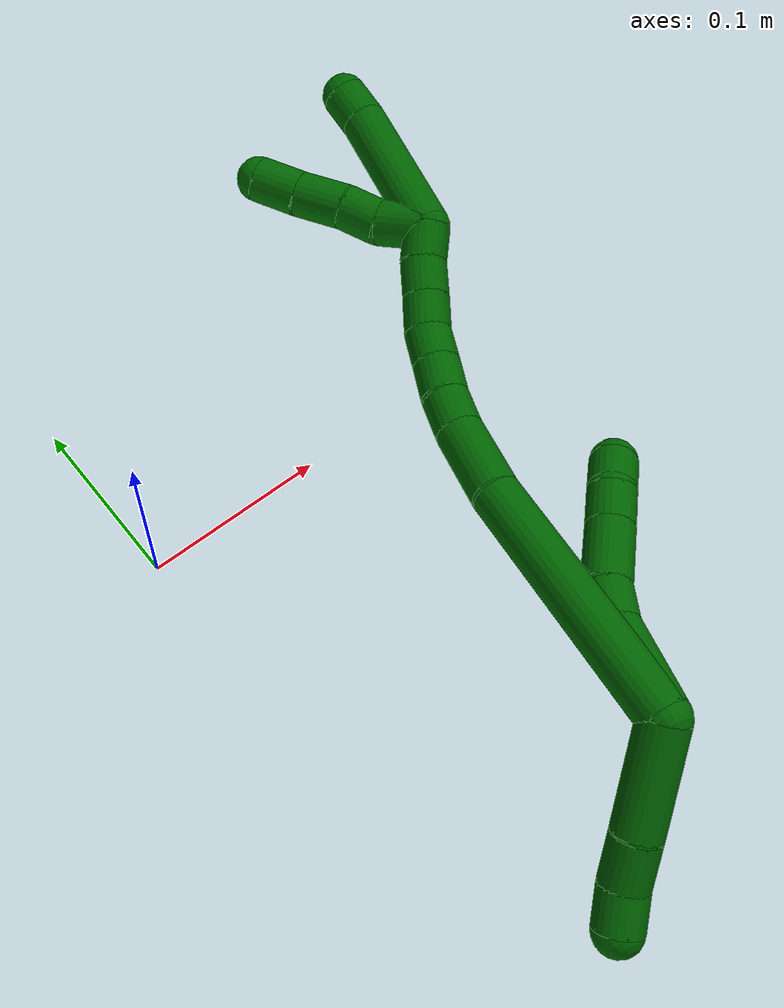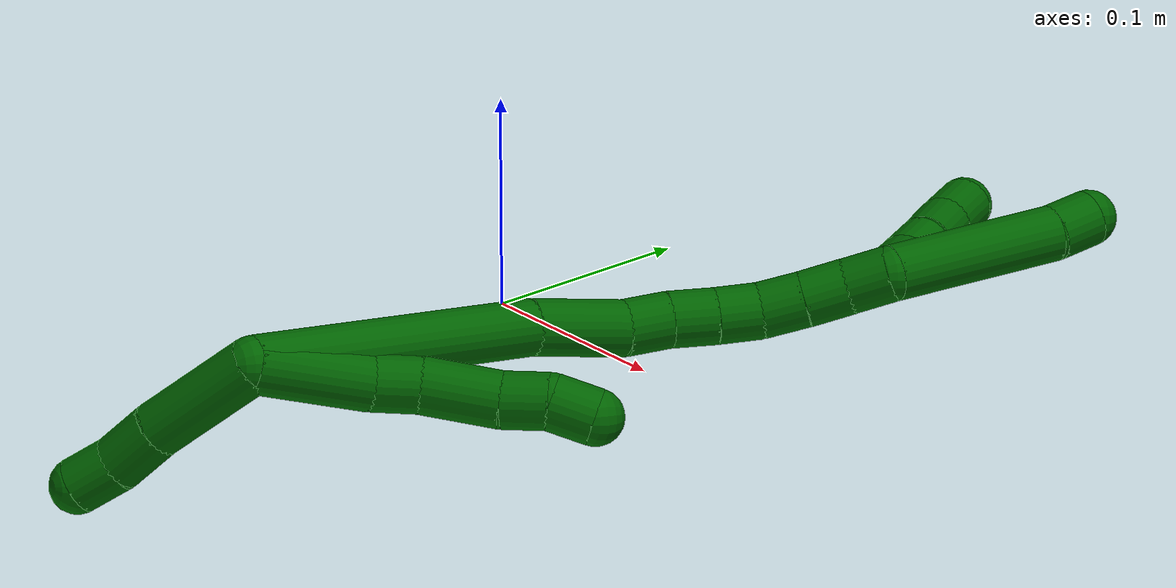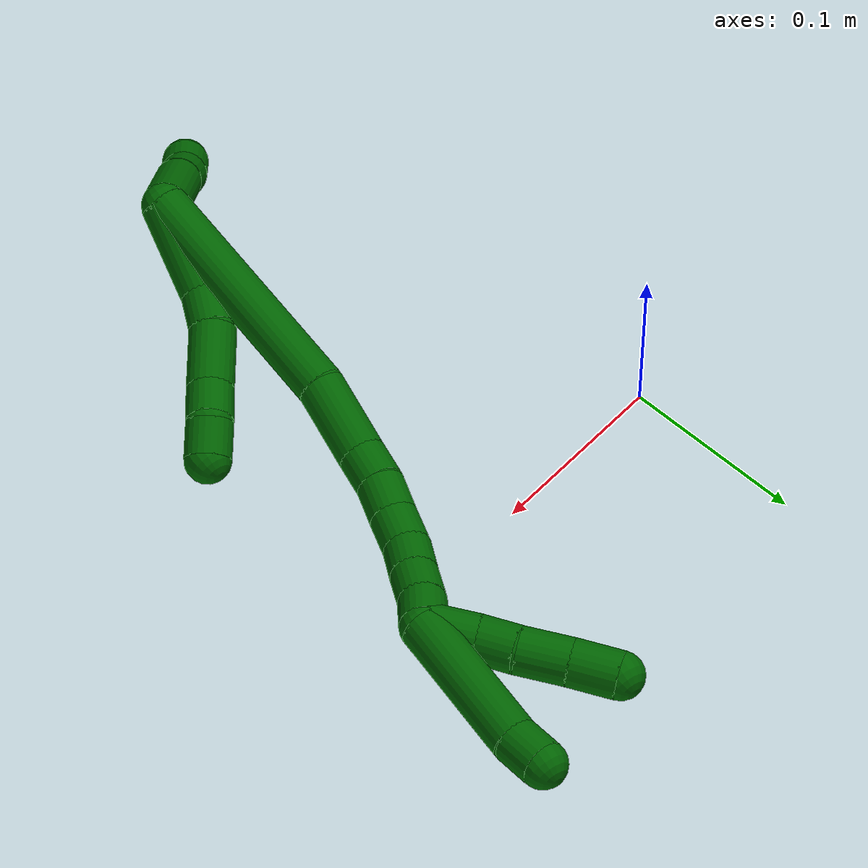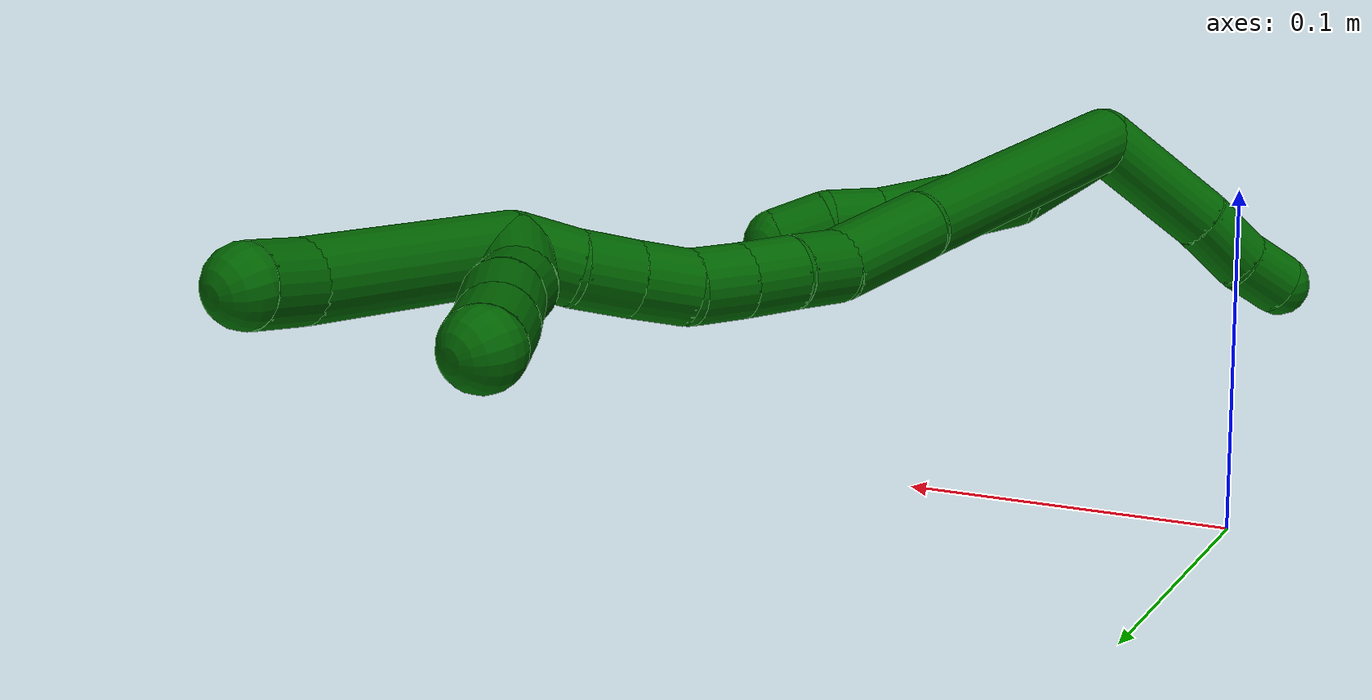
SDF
<sdf version="1.7">
 <world name="default">
  <model name="6">
   <static>0</static>
   <link name="6">
    <collision name="collision-cylinder-e_1_2_8">
     <pose>0.005046 -0.003899 -0.025678 2.9909 0.191883 1.81129</pose>
     <geometry><cylinder><radius>0.0125</radius><length>0.052916</length></cylinder></geometry>
     <surface>
      <friction><ode><mu>1.16</mu><mu2>1.16</mu2><slip1>0</slip1><slip2>0</slip2></ode></friction>
      <contact><ode><kp>1e+06</kp><kd>1</kd><max_vel>0</max_vel><min_depth>0.001</min_depth></ode></contact>
     </surface>
    </collision>
    <visual name="visual-cylinder-e_1_2_8">
     <pose>0.005046 -0.003899 -0.025678 2.9909 0.191883 1.81129</pose>
     <geometry><cylinder><radius>0.0125</radius><length>0.052916</length></cylinder></geometry>
     <material><ambient>0 0.392157 0.003922 1</ambient></material>
    </visual>
    <collision name="collision-cylinder-e_2_8_9">
     <pose>0.013895 -0.006903 -0.061388 -3.05264 0.361105 -2.66328</pose>
     <geometry><cylinder><radius>0.0125</radius><length>0.021531</length></cylinder></geometry>
     <surface>
      <friction><ode><mu>1.16</mu><mu2>1.16</mu2><slip1>0</slip1><slip2>0</slip2></ode></friction>
      <contact><ode><kp>1e+06</kp><kd>1</kd><max_vel>0</max_vel><min_depth>0.001</min_depth></ode></contact>
     </surface>
    </collision>
    <visual name="visual-cylinder-e_2_8_9">
     <pose>0.013895 -0.006903 -0.061388 -3.05264 0.361105 -2.66328</pose>
     <geometry><cylinder><radius>0.0125</radius><length>0.021531</length></cylinder></geometry>
     <material><ambient>0 0.392157 0.003922 1</ambient></material>
    </visual>
    <collision name="collision-cylinder-e_3_9_10">
     <pose>0.027583 -0.004657 -0.085718 -3.04735 0.602761 -2.84049</pose>
     <geometry><cylinder><radius>0.0125</radius><length>0.034869</length></cylinder></geometry>
     <surface>
      <friction><ode><mu>1.16</mu><mu2>1.16</mu2><slip1>0</slip1><slip2>0</slip2></ode></friction>
      <contact><ode><kp>1e+06</kp><kd>1</kd><max_vel>0</max_vel><min_depth>0.001</min_depth></ode></contact>
     </surface>
    </collision>
    <visual name="visual-cylinder-e_3_9_10">
     <pose>0.027583 -0.004657 -0.085718 -3.04735 0.602761 -2.84049</pose>
     <geometry><cylinder><radius>0.0125</radius><length>0.034869</length></cylinder></geometry>
     <material><ambient>0 0.392157 0.003922 1</ambient></material>
    </visual>
    <collision name="collision-cylinder-e_4_10_11">
     <pose>0.042749 -0.001023 -0.108576 -2.88101 0.537674 -2.25368</pose>
     <geometry><cylinder><radius>0.0125</radius><length>0.02063</length></cylinder></geometry>
     <surface>
      <friction><ode><mu>1.16</mu><mu2>1.16</mu2><slip1>0</slip1><slip2>0</slip2></ode></friction>
      <contact><ode><kp>1e+06</kp><kd>1</kd><max_vel>0</max_vel><min_depth>0.001</min_depth></ode></contact>
     </surface>
    </collision>
    <visual name="visual-cylinder-e_4_10_11">
     <pose>0.042749 -0.001023 -0.108576 -2.88101 0.537674 -2.25368</pose>
     <geometry><cylinder><radius>0.0125</radius><length>0.02063</length></cylinder></geometry>
     <material><ambient>0 0.392157 0.003922 1</ambient></material>
    </visual>
    <collision name="collision-cylinder-e_5_11_6">
     <pose>0.054017 0.000445 -0.125141 3.04016 0.639589 2.83741</pose>
     <geometry><cylinder><radius>0.0125</radius><length>0.020053</length></cylinder></geometry>
     <surface>
      <friction><ode><mu>1.16</mu><mu2>1.16</mu2><slip1>0</slip1><slip2>0</slip2></ode></friction>
      <contact><ode><kp>1e+06</kp><kd>1</kd><max_vel>0</max_vel><min_depth>0.001</min_depth></ode></contact>
     </surface>
    </collision>
    <visual name="visual-cylinder-e_5_11_6">
     <pose>0.054017 0.000445 -0.125141 3.04016 0.639589 2.83741</pose>
     <geometry><cylinder><radius>0.0125</radius><length>0.020053</length></cylinder></geometry>
     <material><ambient>0 0.392157 0.003922 1</ambient></material>
    </visual>
    <collision name="collision-cylinder-e_1_2_12">
     <pose>-0.009123 -0.021056 0.014551 0.966096 -0.342385 -0.180858</pose>
     <geometry><cylinder><radius>0.0125</radius><length>0.054344</length></cylinder></geometry>
     <surface>
      <friction><ode><mu>1.16</mu><mu2>1.16</mu2><slip1>0</slip1><slip2>0</slip2></ode></friction>
      <contact><ode><kp>1e+06</kp><kd>1</kd><max_vel>0</max_vel><min_depth>0.001</min_depth></ode></contact>
     </surface>
    </collision>
    <visual name="visual-cylinder-e_1_2_12">
     <pose>-0.009123 -0.021056 0.014551 0.966096 -0.342385 -0.180858</pose>
     <geometry><cylinder><radius>0.0125</radius><length>0.054344</length></cylinder></geometry>
     <material><ambient>0 0.392157 0.003922 1</ambient></material>
    </visual>
    <collision name="collision-cylinder-e_2_12_13">
     <pose>-0.021754 -0.052501 0.035118 1.0459 -0.284355 -0.164668</pose>
     <geometry><cylinder><radius>0.0125</radius><length>0.025013</length></cylinder></geometry>
     <surface>
      <friction><ode><mu>1.16</mu><mu2>1.16</mu2><slip1>0</slip1><slip2>0</slip2></ode></friction>
      <contact><ode><kp>1e+06</kp><kd>1</kd><max_vel>0</max_vel><min_depth>0.001</min_depth></ode></contact>
     </surface>
    </collision>
    <visual name="visual-cylinder-e_2_12_13">
     <pose>-0.021754 -0.052501 0.035118 1.0459 -0.284355 -0.164668</pose>
     <geometry><cylinder><radius>0.0125</radius><length>0.025013</length></cylinder></geometry>
     <material><ambient>0 0.392157 0.003922 1</ambient></material>
    </visual>
    <collision name="collision-cylinder-e_3_13_5">
     <pose>-0.028522 -0.070138 0.047718 0.833341 -0.32132 -0.143203</pose>
     <geometry><cylinder><radius>0.0125</radius><length>0.020642</length></cylinder></geometry>
     <surface>
      <friction><ode><mu>1.16</mu><mu2>1.16</mu2><slip1>0</slip1><slip2>0</slip2></ode></friction>
      <contact><ode><kp>1e+06</kp><kd>1</kd><max_vel>0</max_vel><min_depth>0.001</min_depth></ode></contact>
     </surface>
    </collision>
    <visual name="visual-cylinder-e_3_13_5">
     <pose>-0.028522 -0.070138 0.047718 0.833341 -0.32132 -0.143203</pose>
     <geometry><cylinder><radius>0.0125</radius><length>0.020642</length></cylinder></geometry>
     <material><ambient>0 0.392157 0.003922 1</ambient></material>
    </visual>
    <collision name="collision-cylinder-e_1_2_14">
     <pose>-0.004419 -0.000276 -0.067313 3.1375 -0.06555 -3.01687</pose>
     <geometry><cylinder><radius>0.0125</radius><length>0.134917</length></cylinder></geometry>
     <surface>
      <friction><ode><mu>1.16</mu><mu2>1.16</mu2><slip1>0</slip1><slip2>0</slip2></ode></friction>
      <contact><ode><kp>1e+06</kp><kd>1</kd><max_vel>0</max_vel><min_depth>0.001</min_depth></ode></contact>
     </surface>
    </collision>
    <visual name="visual-cylinder-e_1_2_14">
     <pose>-0.004419 -0.000276 -0.067313 3.1375 -0.06555 -3.01687</pose>
     <geometry><cylinder><radius>0.0125</radius><length>0.134917</length></cylinder></geometry>
     <material><ambient>0 0.392157 0.003922 1</ambient></material>
    </visual>
    <collision name="collision-cylinder-e_2_14_15">
     <pose>-0.006858 -0.001683 -0.156269 3.08933 0.091086 2.10024</pose>
     <geometry><cylinder><radius>0.0125</radius><length>0.043524</length></cylinder></geometry>
     <surface>
      <friction><ode><mu>1.16</mu><mu2>1.16</mu2><slip1>0</slip1><slip2>0</slip2></ode></friction>
      <contact><ode><kp>1e+06</kp><kd>1</kd><max_vel>0</max_vel><min_depth>0.001</min_depth></ode></contact>
     </surface>
    </collision>
    <visual name="visual-cylinder-e_2_14_15">
     <pose>-0.006858 -0.001683 -0.156269 3.08933 0.091086 2.10024</pose>
     <geometry><cylinder><radius>0.0125</radius><length>0.043524</length></cylinder></geometry>
     <material><ambient>0 0.392157 0.003922 1</ambient></material>
    </visual>
    <collision name="collision-cylinder-e_3_15_16">
     <pose>-0.00393 -0.000989 -0.188131 -2.96479 0.091075 -0.949801</pose>
     <geometry><cylinder><radius>0.0125</radius><length>0.020849</length></cylinder></geometry>
     <surface>
      <friction><ode><mu>1.16</mu><mu2>1.16</mu2><slip1>0</slip1><slip2>0</slip2></ode></friction>
      <contact><ode><kp>1e+06</kp><kd>1</kd><max_vel>0</max_vel><min_depth>0.001</min_depth></ode></contact>
     </surface>
    </collision>
    <visual name="visual-cylinder-e_3_15_16">
     <pose>-0.00393 -0.000989 -0.188131 -2.96479 0.091075 -0.949801</pose>
     <geometry><cylinder><radius>0.0125</radius><length>0.020849</length></cylinder></geometry>
     <material><ambient>0 0.392157 0.003922 1</ambient></material>
    </visual>
    <collision name="collision-cylinder-e_4_16_17">
     <pose>-0.000573 0.002386 -0.208276 -2.98676 0.235365 -1.98026</pose>
     <geometry><cylinder><radius>0.0125</radius><length>0.02066</length></cylinder></geometry>
     <surface>
      <friction><ode><mu>1.16</mu><mu2>1.16</mu2><slip1>0</slip1><slip2>0</slip2></ode></friction>
      <contact><ode><kp>1e+06</kp><kd>1</kd><max_vel>0</max_vel><min_depth>0.001</min_depth></ode></contact>
     </surface>
    </collision>
    <visual name="visual-cylinder-e_4_16_17">
     <pose>-0.000573 0.002386 -0.208276 -2.98676 0.235365 -1.98026</pose>
     <geometry><cylinder><radius>0.0125</radius><length>0.02066</length></cylinder></geometry>
     <material><ambient>0 0.392157 0.003922 1</ambient></material>
    </visual>
    <collision name="collision-cylinder-e_5_17_18">
     <pose>0.003917 0.005739 -0.227827 -2.95633 0.209448 -1.69398</pose>
     <geometry><cylinder><radius>0.0125</radius><length>0.020025</length></cylinder></geometry>
     <surface>
      <friction><ode><mu>1.16</mu><mu2>1.16</mu2><slip1>0</slip1><slip2>0</slip2></ode></friction>
      <contact><ode><kp>1e+06</kp><kd>1</kd><max_vel>0</max_vel><min_depth>0.001</min_depth></ode></contact>
     </surface>
    </collision>
    <visual name="visual-cylinder-e_5_17_18">
     <pose>0.003917 0.005739 -0.227827 -2.95633 0.209448 -1.69398</pose>
     <geometry><cylinder><radius>0.0125</radius><length>0.020025</length></cylinder></geometry>
     <material><ambient>0 0.392157 0.003922 1</ambient></material>
    </visual>
    <collision name="collision-cylinder-e_6_18_19">
     <pose>0.00901 0.011673 -0.246056 -2.69405 0.30557 -1.18972</pose>
     <geometry><cylinder><radius>0.0125</radius><length>0.020012</length></cylinder></geometry>
     <surface>
      <friction><ode><mu>1.16</mu><mu2>1.16</mu2><slip1>0</slip1><slip2>0</slip2></ode></friction>
      <contact><ode><kp>1e+06</kp><kd>1</kd><max_vel>0</max_vel><min_depth>0.001</min_depth></ode></contact>
     </surface>
    </collision>
    <visual name="visual-cylinder-e_6_18_19">
     <pose>0.00901 0.011673 -0.246056 -2.69405 0.30557 -1.18972</pose>
     <geometry><cylinder><radius>0.0125</radius><length>0.020012</length></cylinder></geometry>
     <material><ambient>0 0.392157 0.003922 1</ambient></material>
    </visual>
    <collision name="collision-cylinder-e_7_19_20">
     <pose>0.014725 0.020153 -0.26325 -2.67277 0.273878 -1.04675</pose>
     <geometry><cylinder><radius>0.0125</radius><length>0.020005</length></cylinder></geometry>
     <surface>
      <friction><ode><mu>1.16</mu><mu2>1.16</mu2><slip1>0</slip1><slip2>0</slip2></ode></friction>
      <contact><ode><kp>1e+06</kp><kd>1</kd><max_vel>0</max_vel><min_depth>0.001</min_depth></ode></contact>
     </surface>
    </collision>
    <visual name="visual-cylinder-e_7_19_20">
     <pose>0.014725 0.020153 -0.26325 -2.67277 0.273878 -1.04675</pose>
     <geometry><cylinder><radius>0.0125</radius><length>0.020005</length></cylinder></geometry>
     <material><ambient>0 0.392157 0.003922 1</ambient></material>
    </visual>
    <collision name="collision-cylinder-e_8_20_1">
     <pose>0.021357 0.029722 -0.279418 -2.53854 0.403359 -1.16313</pose>
     <geometry><cylinder><radius>0.0125</radius><length>0.020005</length></cylinder></geometry>
     <surface>
      <friction><ode><mu>1.16</mu><mu2>1.16</mu2><slip1>0</slip1><slip2>0</slip2></ode></friction>
      <contact><ode><kp>1e+06</kp><kd>1</kd><max_vel>0</max_vel><min_depth>0.001</min_depth></ode></contact>
     </surface>
    </collision>
    <visual name="visual-cylinder-e_8_20_1">
     <pose>0.021357 0.029722 -0.279418 -2.53854 0.403359 -1.16313</pose>
     <geometry><cylinder><radius>0.0125</radius><length>0.020005</length></cylinder></geometry>
     <material><ambient>0 0.392157 0.003922 1</ambient></material>
    </visual>
    <collision name="collision-cylinder-e_1_1_21">
     <pose>0.024383 0.041064 -0.326415 -2.98748 -0.022559 0.29015</pose>
     <geometry><cylinder><radius>0.0125</radius><length>0.079806</length></cylinder></geometry>
     <surface>
      <friction><ode><mu>1.16</mu><mu2>1.16</mu2><slip1>0</slip1><slip2>0</slip2></ode></friction>
      <contact><ode><kp>1e+06</kp><kd>1</kd><max_vel>0</max_vel><min_depth>0.001</min_depth></ode></contact>
     </surface>
    </collision>
    <visual name="visual-cylinder-e_1_1_21">
     <pose>0.024383 0.041064 -0.326415 -2.98748 -0.022559 0.29015</pose>
     <geometry><cylinder><radius>0.0125</radius><length>0.079806</length></cylinder></geometry>
     <material><ambient>0 0.392157 0.003922 1</ambient></material>
    </visual>
    <collision name="collision-cylinder-e_2_21_4">
     <pose>0.021769 0.049229 -0.375574 -2.93499 -0.170576 1.37921</pose>
     <geometry><cylinder><radius>0.0125</radius><length>0.020194</length></cylinder></geometry>
     <surface>
      <friction><ode><mu>1.16</mu><mu2>1.16</mu2><slip1>0</slip1><slip2>0</slip2></ode></friction>
      <contact><ode><kp>1e+06</kp><kd>1</kd><max_vel>0</max_vel><min_depth>0.001</min_depth></ode></contact>
     </surface>
    </collision>
    <visual name="visual-cylinder-e_2_21_4">
     <pose>0.021769 0.049229 -0.375574 -2.93499 -0.170576 1.37921</pose>
     <geometry><cylinder><radius>0.0125</radius><length>0.020194</length></cylinder></geometry>
     <material><ambient>0 0.392157 0.003922 1</ambient></material>
    </visual>
    <collision name="collision-cylinder-e_1_1_22">
     <pose>0.016143 0.031041 -0.295941 2.73056 -0.752667 -2.17075</pose>
     <geometry><cylinder><radius>0.0125</radius><length>0.026741</length></cylinder></geometry>
     <surface>
      <friction><ode><mu>1.16</mu><mu2>1.16</mu2><slip1>0</slip1><slip2>0</slip2></ode></friction>
      <contact><ode><kp>1e+06</kp><kd>1</kd><max_vel>0</max_vel><min_depth>0.001</min_depth></ode></contact>
     </surface>
    </collision>
    <visual name="visual-cylinder-e_1_1_22">
     <pose>0.016143 0.031041 -0.295941 2.73056 -0.752667 -2.17075</pose>
     <geometry><cylinder><radius>0.0125</radius><length>0.026741</length></cylinder></geometry>
     <material><ambient>0 0.392157 0.003922 1</ambient></material>
    </visual>
    <collision name="collision-cylinder-e_2_22_23">
     <pose>0.000654 0.027119 -0.313401 3.13895 -0.640753 -3.13364</pose>
     <geometry><cylinder><radius>0.0125</radius><length>0.021242</length></cylinder></geometry>
     <surface>
      <friction><ode><mu>1.16</mu><mu2>1.16</mu2><slip1>0</slip1><slip2>0</slip2></ode></friction>
      <contact><ode><kp>1e+06</kp><kd>1</kd><max_vel>0</max_vel><min_depth>0.001</min_depth></ode></contact>
     </surface>
    </collision>
    <visual name="visual-cylinder-e_2_22_23">
     <pose>0.000654 0.027119 -0.313401 3.13895 -0.640753 -3.13364</pose>
     <geometry><cylinder><radius>0.0125</radius><length>0.021242</length></cylinder></geometry>
     <material><ambient>0 0.392157 0.003922 1</ambient></material>
    </visual>
    <collision name="collision-cylinder-e_3_23_24">
     <pose>-0.01453 0.025587 -0.33182 2.99036 -0.722645 -2.74588</pose>
     <geometry><cylinder><radius>0.0125</radius><length>0.026716</length></cylinder></geometry>
     <surface>
      <friction><ode><mu>1.16</mu><mu2>1.16</mu2><slip1>0</slip1><slip2>0</slip2></ode></friction>
      <contact><ode><kp>1e+06</kp><kd>1</kd><max_vel>0</max_vel><min_depth>0.001</min_depth></ode></contact>
     </surface>
    </collision>
    <visual name="visual-cylinder-e_3_23_24">
     <pose>-0.01453 0.025587 -0.33182 2.99036 -0.722645 -2.74588</pose>
     <geometry><cylinder><radius>0.0125</radius><length>0.026716</length></cylinder></geometry>
     <material><ambient>0 0.392157 0.003922 1</ambient></material>
    </visual>
    <collision name="collision-cylinder-e_4_24_3">
     <pose>-0.031282 0.023231 -0.351555 3.05564 -0.676297 -2.89823</pose>
     <geometry><cylinder><radius>0.0125</radius><length>0.025302</length></cylinder></geometry>
     <surface>
      <friction><ode><mu>1.16</mu><mu2>1.16</mu2><slip1>0</slip1><slip2>0</slip2></ode></friction>
      <contact><ode><kp>1e+06</kp><kd>1</kd><max_vel>0</max_vel><min_depth>0.001</min_depth></ode></contact>
     </surface>
    </collision>
    <visual name="visual-cylinder-e_4_24_3">
     <pose>-0.031282 0.023231 -0.351555 3.05564 -0.676297 -2.89823</pose>
     <geometry><cylinder><radius>0.0125</radius><length>0.025302</length></cylinder></geometry>
     <material><ambient>0 0.392157 0.003922 1</ambient></material>
    </visual>
    <collision name="collision-sphere-3">
     <pose>-0.039201 0.022384 -0.361385 0 -0 0</pose>
     <geometry><sphere><radius>0.0125</radius></sphere></geometry>
     <surface>
      <friction><ode><mu>1.16</mu><mu2>1.16</mu2><slip1>0</slip1><slip2>0</slip2></ode></friction>
      <contact><ode><kp>1e+06</kp><kd>1</kd><max_vel>0</max_vel><min_depth>0.001</min_depth></ode></contact>
     </surface>
    </collision>
    <visual name="visual-sphere-3">
     <pose>-0.039201 0.022384 -0.361385 0 -0 0</pose>
     <geometry><sphere><radius>0.0125</radius></sphere></geometry>
     <material><ambient>0 0.392157 0.003922 1</ambient></material>
    </visual>
    <collision name="collision-sphere-24">
     <pose>-0.023364 0.024078 -0.341725 0 -0 0</pose>
     <geometry><sphere><radius>0.0125</radius></sphere></geometry>
     <surface>
      <friction><ode><mu>1.16</mu><mu2>1.16</mu2><slip1>0</slip1><slip2>0</slip2></ode></friction>
      <contact><ode><kp>1e+06</kp><kd>1</kd><max_vel>0</max_vel><min_depth>0.001</min_depth></ode></contact>
     </surface>
    </collision>
    <visual name="visual-sphere-24">
     <pose>-0.023364 0.024078 -0.341725 0 -0 0</pose>
     <geometry><sphere><radius>0.0125</radius></sphere></geometry>
     <material><ambient>0 0.392157 0.003922 1</ambient></material>
    </visual>
    <collision name="collision-sphere-23">
     <pose>-0.005695 0.027097 -0.321915 0 -0 0</pose>
     <geometry><sphere><radius>0.0125</radius></sphere></geometry>
     <surface>
      <friction><ode><mu>1.16</mu><mu2>1.16</mu2><slip1>0</slip1><slip2>0</slip2></ode></friction>
      <contact><ode><kp>1e+06</kp><kd>1</kd><max_vel>0</max_vel><min_depth>0.001</min_depth></ode></contact>
     </surface>
    </collision>
    <visual name="visual-sphere-23">
     <pose>-0.005695 0.027097 -0.321915 0 -0 0</pose>
     <geometry><sphere><radius>0.0125</radius></sphere></geometry>
     <material><ambient>0 0.392157 0.003922 1</ambient></material>
    </visual>
    <collision name="collision-sphere-22">
     <pose>0.007003 0.027142 -0.304887 0 -0 0</pose>
     <geometry><sphere><radius>0.0125</radius></sphere></geometry>
     <surface>
      <friction><ode><mu>1.16</mu><mu2>1.16</mu2><slip1>0</slip1><slip2>0</slip2></ode></friction>
      <contact><ode><kp>1e+06</kp><kd>1</kd><max_vel>0</max_vel><min_depth>0.001</min_depth></ode></contact>
     </surface>
    </collision>
    <visual name="visual-sphere-22">
     <pose>0.007003 0.027142 -0.304887 0 -0 0</pose>
     <geometry><sphere><radius>0.0125</radius></sphere></geometry>
     <material><ambient>0 0.392157 0.003922 1</ambient></material>
    </visual>
    <collision name="collision-sphere-4">
     <pose>0.020055 0.05127 -0.385313 0 -0 0</pose>
     <geometry><sphere><radius>0.0125</radius></sphere></geometry>
     <surface>
      <friction><ode><mu>1.16</mu><mu2>1.16</mu2><slip1>0</slip1><slip2>0</slip2></ode></friction>
      <contact><ode><kp>1e+06</kp><kd>1</kd><max_vel>0</max_vel><min_depth>0.001</min_depth></ode></contact>
     </surface>
    </collision>
    <visual name="visual-sphere-4">
     <pose>0.020055 0.05127 -0.385313 0 -0 0</pose>
     <geometry><sphere><radius>0.0125</radius></sphere></geometry>
     <material><ambient>0 0.392157 0.003922 1</ambient></material>
    </visual>
    <collision name="collision-sphere-21">
     <pose>0.023483 0.047187 -0.365836 0 -0 0</pose>
     <geometry><sphere><radius>0.0125</radius></sphere></geometry>
     <surface>
      <friction><ode><mu>1.16</mu><mu2>1.16</mu2><slip1>0</slip1><slip2>0</slip2></ode></friction>
      <contact><ode><kp>1e+06</kp><kd>1</kd><max_vel>0</max_vel><min_depth>0.001</min_depth></ode></contact>
     </surface>
    </collision>
    <visual name="visual-sphere-21">
     <pose>0.023483 0.047187 -0.365836 0 -0 0</pose>
     <geometry><sphere><radius>0.0125</radius></sphere></geometry>
     <material><ambient>0 0.392157 0.003922 1</ambient></material>
    </visual>
    <collision name="collision-sphere-1">
     <pose>0.025283 0.03494 -0.286995 0 -0 0</pose>
     <geometry><sphere><radius>0.0125</radius></sphere></geometry>
     <surface>
      <friction><ode><mu>1.16</mu><mu2>1.16</mu2><slip1>0</slip1><slip2>0</slip2></ode></friction>
      <contact><ode><kp>1e+06</kp><kd>1</kd><max_vel>0</max_vel><min_depth>0.001</min_depth></ode></contact>
     </surface>
    </collision>
    <visual name="visual-sphere-1">
     <pose>0.025283 0.03494 -0.286995 0 -0 0</pose>
     <geometry><sphere><radius>0.0125</radius></sphere></geometry>
     <material><ambient>0 0.392157 0.003922 1</ambient></material>
    </visual>
    <collision name="collision-sphere-6">
     <pose>0.060001 -0.000369 -0.133144 0 -0 0</pose>
     <geometry><sphere><radius>0.0125</radius></sphere></geometry>
     <surface>
      <friction><ode><mu>1.16</mu><mu2>1.16</mu2><slip1>0</slip1><slip2>0</slip2></ode></friction>
      <contact><ode><kp>1e+06</kp><kd>1</kd><max_vel>0</max_vel><min_depth>0.001</min_depth></ode></contact>
     </surface>
    </collision>
    <visual name="visual-sphere-6">
     <pose>0.060001 -0.000369 -0.133144 0 -0 0</pose>
     <geometry><sphere><radius>0.0125</radius></sphere></geometry>
     <material><ambient>0 0.392157 0.003922 1</ambient></material>
    </visual>
    <collision name="collision-sphere-11">
     <pose>0.048032 0.00126 -0.117137 0 -0 0</pose>
     <geometry><sphere><radius>0.0125</radius></sphere></geometry>
     <surface>
      <friction><ode><mu>1.16</mu><mu2>1.16</mu2><slip1>0</slip1><slip2>0</slip2></ode></friction>
      <contact><ode><kp>1e+06</kp><kd>1</kd><max_vel>0</max_vel><min_depth>0.001</min_depth></ode></contact>
     </surface>
    </collision>
    <visual name="visual-sphere-11">
     <pose>0.048032 0.00126 -0.117137 0 -0 0</pose>
     <geometry><sphere><radius>0.0125</radius></sphere></geometry>
     <material><ambient>0 0.392157 0.003922 1</ambient></material>
    </visual>
    <collision name="collision-sphere-10">
     <pose>0.037467 -0.003306 -0.100016 0 -0 0</pose>
     <geometry><sphere><radius>0.0125</radius></sphere></geometry>
     <surface>
      <friction><ode><mu>1.16</mu><mu2>1.16</mu2><slip1>0</slip1><slip2>0</slip2></ode></friction>
      <contact><ode><kp>1e+06</kp><kd>1</kd><max_vel>0</max_vel><min_depth>0.001</min_depth></ode></contact>
     </surface>
    </collision>
    <visual name="visual-sphere-10">
     <pose>0.037467 -0.003306 -0.100016 0 -0 0</pose>
     <geometry><sphere><radius>0.0125</radius></sphere></geometry>
     <material><ambient>0 0.392157 0.003922 1</ambient></material>
    </visual>
    <collision name="collision-sphere-9">
     <pose>0.017699 -0.006009 -0.071419 0 -0 0</pose>
     <geometry><sphere><radius>0.0125</radius></sphere></geometry>
     <surface>
      <friction><ode><mu>1.16</mu><mu2>1.16</mu2><slip1>0</slip1><slip2>0</slip2></ode></friction>
      <contact><ode><kp>1e+06</kp><kd>1</kd><max_vel>0</max_vel><min_depth>0.001</min_depth></ode></contact>
     </surface>
    </collision>
    <visual name="visual-sphere-9">
     <pose>0.017699 -0.006009 -0.071419 0 -0 0</pose>
     <geometry><sphere><radius>0.0125</radius></sphere></geometry>
     <material><ambient>0 0.392157 0.003922 1</ambient></material>
    </visual>
    <collision name="collision-sphere-2">
     <geometry><sphere><radius>0.0125</radius></sphere></geometry>
     <surface>
      <friction><ode><mu>1.16</mu><mu2>1.16</mu2><slip1>0</slip1><slip2>0</slip2></ode></friction>
      <contact><ode><kp>1e+06</kp><kd>1</kd><max_vel>0</max_vel><min_depth>0.001</min_depth></ode></contact>
     </surface>
    </collision>
    <visual name="visual-sphere-2">
     <geometry><sphere><radius>0.0125</radius></sphere></geometry>
     <material><ambient>0 0.392157 0.003922 1</ambient></material>
    </visual>
    <collision name="collision-sphere-19">
     <pose>0.01202 0.015802 -0.254659 0 -0 0</pose>
     <geometry><sphere><radius>0.0125</radius></sphere></geometry>
     <surface>
      <friction><ode><mu>1.16</mu><mu2>1.16</mu2><slip1>0</slip1><slip2>0</slip2></ode></friction>
      <contact><ode><kp>1e+06</kp><kd>1</kd><max_vel>0</max_vel><min_depth>0.001</min_depth></ode></contact>
     </surface>
    </collision>
    <visual name="visual-sphere-19">
     <pose>0.01202 0.015802 -0.254659 0 -0 0</pose>
     <geometry><sphere><radius>0.0125</radius></sphere></geometry>
     <material><ambient>0 0.392157 0.003922 1</ambient></material>
    </visual>
    <collision name="collision-sphere-8">
     <pose>0.010092 -0.007798 -0.051356 0 -0 0</pose>
     <geometry><sphere><radius>0.0125</radius></sphere></geometry>
     <surface>
      <friction><ode><mu>1.16</mu><mu2>1.16</mu2><slip1>0</slip1><slip2>0</slip2></ode></friction>
      <contact><ode><kp>1e+06</kp><kd>1</kd><max_vel>0</max_vel><min_depth>0.001</min_depth></ode></contact>
     </surface>
    </collision>
    <visual name="visual-sphere-8">
     <pose>0.010092 -0.007798 -0.051356 0 -0 0</pose>
     <geometry><sphere><radius>0.0125</radius></sphere></geometry>
     <material><ambient>0 0.392157 0.003922 1</ambient></material>
    </visual>
    <collision name="collision-sphere-12">
     <pose>-0.018245 -0.042113 0.029102 0 -0 0</pose>
     <geometry><sphere><radius>0.0125</radius></sphere></geometry>
     <surface>
      <friction><ode><mu>1.16</mu><mu2>1.16</mu2><slip1>0</slip1><slip2>0</slip2></ode></friction>
      <contact><ode><kp>1e+06</kp><kd>1</kd><max_vel>0</max_vel><min_depth>0.001</min_depth></ode></contact>
     </surface>
    </collision>
    <visual name="visual-sphere-12">
     <pose>-0.018245 -0.042113 0.029102 0 -0 0</pose>
     <geometry><sphere><radius>0.0125</radius></sphere></geometry>
     <material><ambient>0 0.392157 0.003922 1</ambient></material>
    </visual>
    <collision name="collision-sphere-13">
     <pose>-0.025262 -0.062889 0.041134 0 -0 0</pose>
     <geometry><sphere><radius>0.0125</radius></sphere></geometry>
     <surface>
      <friction><ode><mu>1.16</mu><mu2>1.16</mu2><slip1>0</slip1><slip2>0</slip2></ode></friction>
      <contact><ode><kp>1e+06</kp><kd>1</kd><max_vel>0</max_vel><min_depth>0.001</min_depth></ode></contact>
     </surface>
    </collision>
    <visual name="visual-sphere-13">
     <pose>-0.025262 -0.062889 0.041134 0 -0 0</pose>
     <geometry><sphere><radius>0.0125</radius></sphere></geometry>
     <material><ambient>0 0.392157 0.003922 1</ambient></material>
    </visual>
    <collision name="collision-sphere-5">
     <pose>-0.031782 -0.077386 0.054303 0 -0 0</pose>
     <geometry><sphere><radius>0.0125</radius></sphere></geometry>
     <surface>
      <friction><ode><mu>1.16</mu><mu2>1.16</mu2><slip1>0</slip1><slip2>0</slip2></ode></friction>
      <contact><ode><kp>1e+06</kp><kd>1</kd><max_vel>0</max_vel><min_depth>0.001</min_depth></ode></contact>
     </surface>
    </collision>
    <visual name="visual-sphere-5">
     <pose>-0.031782 -0.077386 0.054303 0 -0 0</pose>
     <geometry><sphere><radius>0.0125</radius></sphere></geometry>
     <material><ambient>0 0.392157 0.003922 1</ambient></material>
    </visual>
    <collision name="collision-sphere-14">
     <pose>-0.008838 -0.000551 -0.134627 0 -0 0</pose>
     <geometry><sphere><radius>0.0125</radius></sphere></geometry>
     <surface>
      <friction><ode><mu>1.16</mu><mu2>1.16</mu2><slip1>0</slip1><slip2>0</slip2></ode></friction>
      <contact><ode><kp>1e+06</kp><kd>1</kd><max_vel>0</max_vel><min_depth>0.001</min_depth></ode></contact>
     </surface>
    </collision>
    <visual name="visual-sphere-14">
     <pose>-0.008838 -0.000551 -0.134627 0 -0 0</pose>
     <geometry><sphere><radius>0.0125</radius></sphere></geometry>
     <material><ambient>0 0.392157 0.003922 1</ambient></material>
    </visual>
    <collision name="collision-sphere-15">
     <pose>-0.004879 -0.002815 -0.177911 0 -0 0</pose>
     <geometry><sphere><radius>0.0125</radius></sphere></geometry>
     <surface>
      <friction><ode><mu>1.16</mu><mu2>1.16</mu2><slip1>0</slip1><slip2>0</slip2></ode></friction>
      <contact><ode><kp>1e+06</kp><kd>1</kd><max_vel>0</max_vel><min_depth>0.001</min_depth></ode></contact>
     </surface>
    </collision>
    <visual name="visual-sphere-15">
     <pose>-0.004879 -0.002815 -0.177911 0 -0 0</pose>
     <geometry><sphere><radius>0.0125</radius></sphere></geometry>
     <material><ambient>0 0.392157 0.003922 1</ambient></material>
    </visual>
    <collision name="collision-sphere-16">
     <pose>-0.002982 0.000836 -0.19835 0 -0 0</pose>
     <geometry><sphere><radius>0.0125</radius></sphere></geometry>
     <surface>
      <friction><ode><mu>1.16</mu><mu2>1.16</mu2><slip1>0</slip1><slip2>0</slip2></ode></friction>
      <contact><ode><kp>1e+06</kp><kd>1</kd><max_vel>0</max_vel><min_depth>0.001</min_depth></ode></contact>
     </surface>
    </collision>
    <visual name="visual-sphere-16">
     <pose>-0.002982 0.000836 -0.19835 0 -0 0</pose>
     <geometry><sphere><radius>0.0125</radius></sphere></geometry>
     <material><ambient>0 0.392157 0.003922 1</ambient></material>
    </visual>
    <collision name="collision-sphere-17">
     <pose>0.001836 0.003935 -0.218201 0 -0 0</pose>
     <geometry><sphere><radius>0.0125</radius></sphere></geometry>
     <surface>
      <friction><ode><mu>1.16</mu><mu2>1.16</mu2><slip1>0</slip1><slip2>0</slip2></ode></friction>
      <contact><ode><kp>1e+06</kp><kd>1</kd><max_vel>0</max_vel><min_depth>0.001</min_depth></ode></contact>
     </surface>
    </collision>
    <visual name="visual-sphere-17">
     <pose>0.001836 0.003935 -0.218201 0 -0 0</pose>
     <geometry><sphere><radius>0.0125</radius></sphere></geometry>
     <material><ambient>0 0.392157 0.003922 1</ambient></material>
    </visual>
    <collision name="collision-sphere-18">
     <pose>0.005999 0.007543 -0.237454 0 -0 0</pose>
     <geometry><sphere><radius>0.0125</radius></sphere></geometry>
     <surface>
      <friction><ode><mu>1.16</mu><mu2>1.16</mu2><slip1>0</slip1><slip2>0</slip2></ode></friction>
      <contact><ode><kp>1e+06</kp><kd>1</kd><max_vel>0</max_vel><min_depth>0.001</min_depth></ode></contact>
     </surface>
    </collision>
    <visual name="visual-sphere-18">
     <pose>0.005999 0.007543 -0.237454 0 -0 0</pose>
     <geometry><sphere><radius>0.0125</radius></sphere></geometry>
     <material><ambient>0 0.392157 0.003922 1</ambient></material>
    </visual>
    <collision name="collision-sphere-20">
     <pose>0.017431 0.024505 -0.271841 0 -0 0</pose>
     <geometry><sphere><radius>0.0125</radius></sphere></geometry>
     <surface>
      <friction><ode><mu>1.16</mu><mu2>1.16</mu2><slip1>0</slip1><slip2>0</slip2></ode></friction>
      <contact><ode><kp>1e+06</kp><kd>1</kd><max_vel>0</max_vel><min_depth>0.001</min_depth></ode></contact>
     </surface>
    </collision>
    <visual name="visual-sphere-20">
     <pose>0.017431 0.024505 -0.271841 0 -0 0</pose>
     <geometry><sphere><radius>0.0125</radius></sphere></geometry>
     <material><ambient>0 0.392157 0.003922 1</ambient></material>
    </visual>
    <inertial>
     <pose>0.004677 0.005038 -0.157575 0 -0 0</pose>
     <mass>0.75</mass>
     <inertia>
      <ixx>-0.000173</ixx>
      <ixy>0</ixy>
      <ixz>0</ixz>
      <iyy>0.000191</iyy>
      <iyz>0</iyz>
      <izz>-1.7e-05</izz>
     </inertia>
    </inertial>
   </link>
   <pose>0.117152 -0.230061 0.074901 1.46185 0.216835 -0.252555</pose>
  </model>
 </world>
</sdf>
